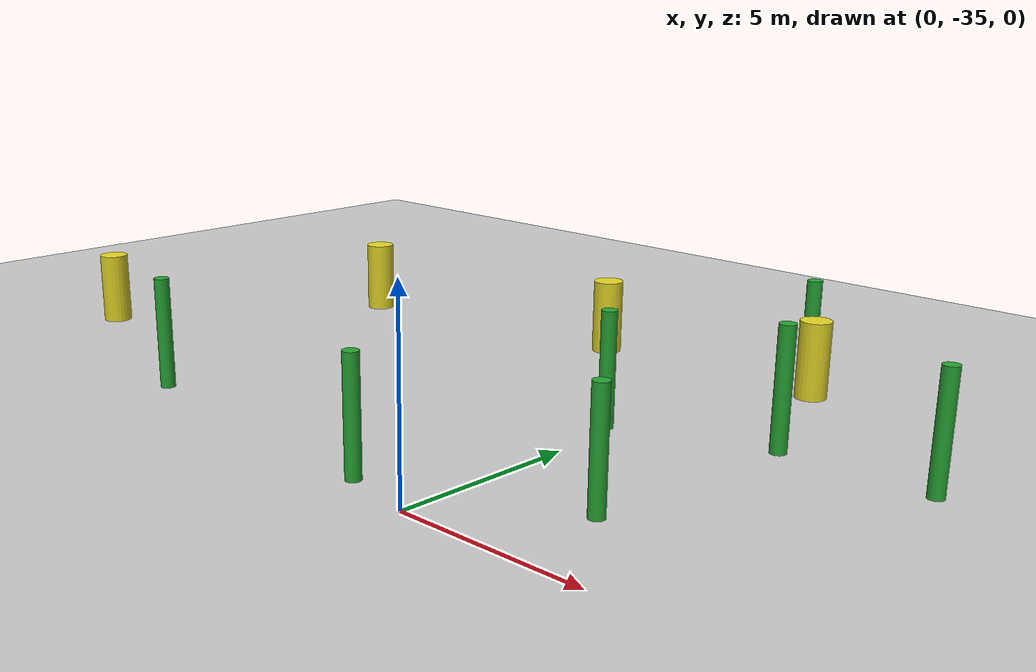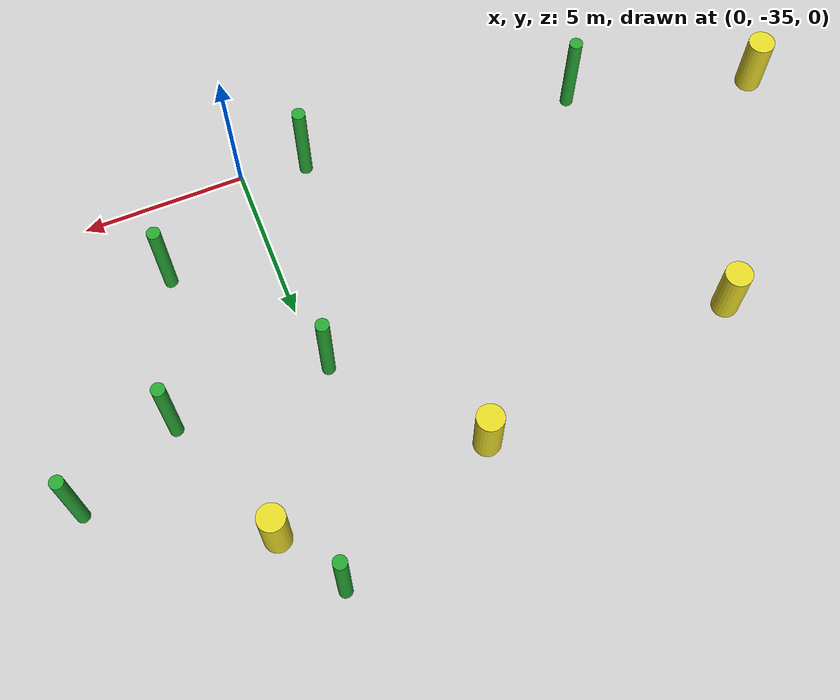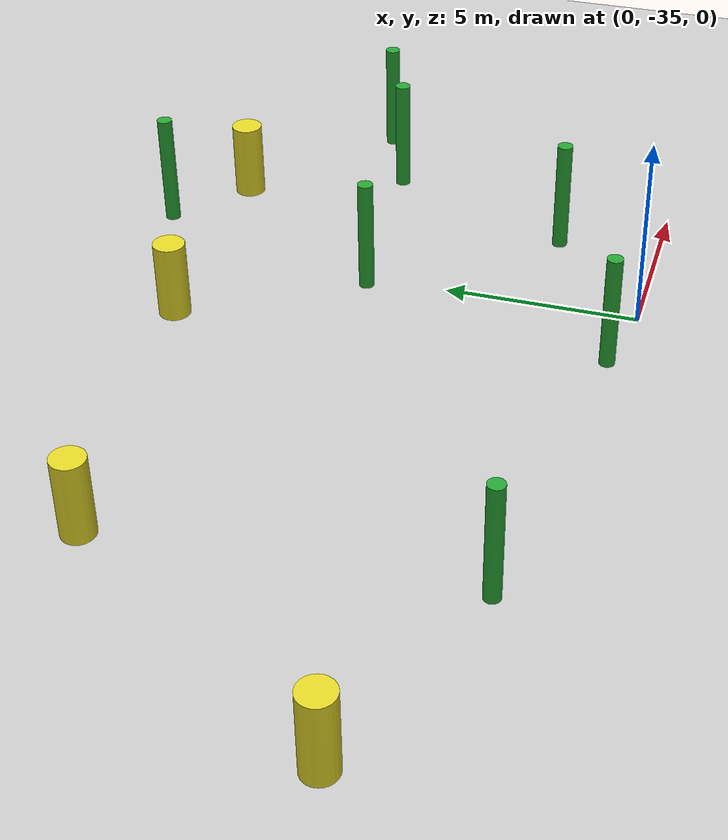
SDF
<sdf version="1.7">
 <world name="default">
  <model name="ground_plane">
   <static>1</static>
   <link name="link">
    <collision name="collision">
     <geometry><plane><normal>0 0 1</normal><size>100 100</size></plane></geometry>
     <surface>
      <contact><collide_bitmask>65535</collide_bitmask></contact>
      <friction><ode><mu>100</mu><mu2>50</mu2></ode></friction>
     </surface>
    </collision>
    <visual name="visual">
     <cast_shadows>0</cast_shadows>
     <geometry><plane><normal>0 0 1</normal><size>100 100</size></plane></geometry>
     <material>
      <script><uri>file://media/materials/scripts/gazebo.material</uri><name>Gazebo/Grey</name></script>
     </material>
    </visual>
   </link>
  </model>
  <model name="cylinder8">
   <pose>-4.68562 -30.5584 0 0 -0 0</pose>
   <frame name="obs_cylinder_small::__model__" attached_to="obs_cylinder_small::link">
    <pose relative_to="__model__">9 3 2 0 -0 0</pose>
   </frame>
   <link name="obs_cylinder_small::link">
    <inertial><mass>1</mass></inertial>
    <pose relative_to="obs_cylinder_small::__model__">0 0 0 0 -0 0</pose>
    <visual name="visual">
     <geometry><cylinder><radius>0.2</radius><length>3</length></cylinder></geometry>
     <material>
      <script><name>Gazebo/Green</name><uri>file://media/materials/scripts/gazebo.material</uri></script>
     </material>
    </visual>
    <collision name="collision">
     <geometry><cylinder><radius>0.25</radius><length>3</length></cylinder></geometry>
    </collision>
   </link>
   <static>1</static>
  </model>
  <model name="cylinder4_clone_13">
   <pose>-1.50814 -19.6511 0 0 -0 0</pose>
   <frame name="obs_cylinder_small::__model__" attached_to="obs_cylinder_small::link">
    <pose relative_to="__model__">3.01135 -2.03851 1.5 0 -0 0</pose>
   </frame>
   <link name="obs_cylinder_small::link">
    <inertial><mass>1</mass></inertial>
    <pose relative_to="obs_cylinder_small::__model__">0 0 0 0 -0 0</pose>
    <visual name="visual">
     <geometry><cylinder><radius>0.2</radius><length>3</length></cylinder></geometry>
     <material>
      <script><name>Gazebo/Green</name><uri>file://media/materials/scripts/gazebo.material</uri></script>
     </material>
    </visual>
    <collision name="collision">
     <geometry><cylinder><radius>0.25</radius><length>3</length></cylinder></geometry>
    </collision>
   </link>
   <static>1</static>
  </model>
  <model name="cylinder3_clone_3">
   <pose>-12.6791 -29.8524 0 0 -0 0</pose>
   <frame name="obs_cylinder_small::__model__" attached_to="obs_cylinder_small::link">
    <pose relative_to="__model__">2.02255 -4.00149 1.5 0 -0 0</pose>
   </frame>
   <link name="obs_cylinder_small::link">
    <inertial><mass>1</mass></inertial>
    <pose relative_to="obs_cylinder_small::__model__">0 0 0 0 -0 0</pose>
    <visual name="visual">
     <geometry><cylinder><radius>0.2</radius><length>3</length></cylinder></geometry>
     <material>
      <script><name>Gazebo/Green</name><uri>file://media/materials/scripts/gazebo.material</uri></script>
     </material>
    </visual>
    <collision name="collision">
     <geometry><cylinder><radius>0.25</radius><length>3</length></cylinder></geometry>
    </collision>
   </link>
   <static>1</static>
  </model>
  <model name="cylinder3_clone_9">
   <pose>-3.0485 -28.8006 0 0 -0 0</pose>
   <frame name="obs_cylinder_small::__model__" attached_to="obs_cylinder_small::link">
    <pose relative_to="__model__">1.03519 -5.79704 1.5 0 -0 0</pose>
   </frame>
   <link name="obs_cylinder_small::link">
    <inertial><mass>1</mass></inertial>
    <pose relative_to="obs_cylinder_small::__model__">0 0 0 0 -0 0</pose>
    <visual name="visual">
     <geometry><cylinder><radius>0.2</radius><length>3</length></cylinder></geometry>
     <material>
      <script><name>Gazebo/Green</name><uri>file://media/materials/scripts/gazebo.material</uri></script>
     </material>
    </visual>
    <collision name="collision">
     <geometry><cylinder><radius>0.25</radius><length>3</length></cylinder></geometry>
    </collision>
   </link>
   <static>1</static>
  </model>
  <model name="cylinder4_clone_17_clone_5_clone">
   <frame name="obs_cylinder_large::__model__" attached_to="obs_cylinder_large::link">
    <pose relative_to="__model__">-1.00318 -3.92453 1.5 0 -0 0</pose>
   </frame>
   <link name="obs_cylinder_large::link">
    <inertial><mass>1</mass></inertial>
    <pose relative_to="obs_cylinder_large::__model__">0 0 0 0 -0 0</pose>
    <visual name="visual">
     <geometry><cylinder><radius>0.4</radius><length>2</length></cylinder></geometry>
     <material>
      <script><name>Gazebo/Yellow</name><uri>file://media/materials/scripts/gazebo.material</uri></script>
     </material>
    </visual>
    <collision name="collision">
     <geometry><cylinder><radius>0.25</radius><length>2</length></cylinder></geometry>
    </collision>
   </link>
   <static>1</static>
   <pose>-10.7035 -21.3374 0 0 -0 0</pose>
  </model>
  <model name="cylinder4_clone_17_clone_5_clone_0">
   <frame name="obs_cylinder_large::__model__" attached_to="obs_cylinder_large::link">
    <pose relative_to="__model__">-1.00318 -3.92453 1.5 0 -0 0</pose>
   </frame>
   <link name="obs_cylinder_large::link">
    <inertial><mass>1</mass></inertial>
    <pose relative_to="obs_cylinder_large::__model__">0 0 0 0 -0 0</pose>
    <visual name="visual">
     <geometry><cylinder><radius>0.4</radius><length>2</length></cylinder></geometry>
     <material>
      <script><name>Gazebo/Yellow</name><uri>file://media/materials/scripts/gazebo.material</uri></script>
     </material>
    </visual>
    <collision name="collision">
     <geometry><cylinder><radius>0.25</radius><length>2</length></cylinder></geometry>
    </collision>
   </link>
   <static>1</static>
   <pose>-2.56336 -20.0257 0 0 -0 0</pose>
  </model>
  <model name="cylinder4_clone_17_clone_5_clone_1">
   <frame name="obs_cylinder_large::__model__" attached_to="obs_cylinder_large::link">
    <pose relative_to="__model__">-1.00318 -3.92453 1.5 0 -0 0</pose>
   </frame>
   <link name="obs_cylinder_large::link">
    <inertial><mass>1</mass></inertial>
    <pose relative_to="obs_cylinder_large::__model__">0 0 0 0 -0 0</pose>
    <visual name="visual">
     <geometry><cylinder><radius>0.4</radius><length>2</length></cylinder></geometry>
     <material>
      <script><name>Gazebo/Yellow</name><uri>file://media/materials/scripts/gazebo.material</uri></script>
     </material>
    </visual>
    <collision name="collision">
     <geometry><cylinder><radius>0.25</radius><length>2</length></cylinder></geometry>
    </collision>
   </link>
   <static>1</static>
   <pose>3.7161 -19.6384 0 0 -0 0</pose>
  </model>
  <model name="cylinder4_clone_11_clone_27_clone_0">
   <frame name="obs_cylinder_small::__model__" attached_to="obs_cylinder_small::link">
    <pose relative_to="__model__">9.0654 0.083267 1.5 0 -0 0</pose>
   </frame>
   <link name="obs_cylinder_small::link">
    <inertial><mass>1</mass></inertial>
    <pose relative_to="obs_cylinder_small::__model__">0 0 0 0 -0 0</pose>
    <visual name="visual">
     <geometry><cylinder><radius>0.2</radius><length>3</length></cylinder></geometry>
     <material>
      <script><name>Gazebo/Green</name><uri>file://media/materials/scripts/gazebo.material</uri></script>
     </material>
    </visual>
    <collision name="collision">
     <geometry><cylinder><radius>0.25</radius><length>3</length></cylinder></geometry>
    </collision>
   </link>
   <static>1</static>
   <pose>-9.37622 -28.0112 0 0 -0 0</pose>
  </model>
  <model name="cylinder4_clone_11_clone_27_clone_1">
   <frame name="obs_cylinder_small::__model__" attached_to="obs_cylinder_small::link">
    <pose relative_to="__model__">9.0654 0.083267 1.5 0 -0 0</pose>
   </frame>
   <link name="obs_cylinder_small::link">
    <inertial><mass>1</mass></inertial>
    <pose relative_to="obs_cylinder_small::__model__">0 0 0 0 -0 0</pose>
    <visual name="visual">
     <geometry><cylinder><radius>0.2</radius><length>3</length></cylinder></geometry>
     <material>
      <script><name>Gazebo/Green</name><uri>file://media/materials/scripts/gazebo.material</uri></script>
     </material>
    </visual>
    <collision name="collision">
     <geometry><cylinder><radius>0.25</radius><length>3</length></cylinder></geometry>
    </collision>
   </link>
   <static>1</static>
   <pose>-1.59962 -26.4027 0 0 -0 0</pose>
  </model>
  <model name="cylinder4_clone_17_clone_5_clone_clone_0">
   <frame name="obs_cylinder_large::__model__" attached_to="obs_cylinder_large::link">
    <pose relative_to="__model__">-1.00318 -3.92453 1.5 0 -0 0</pose>
   </frame>
   <link name="obs_cylinder_large::link">
    <inertial><mass>1</mass></inertial>
    <pose relative_to="obs_cylinder_large::__model__">0 0 0 0 -0 0</pose>
    <visual name="visual">
     <geometry><cylinder><radius>0.4</radius><length>2</length></cylinder></geometry>
     <material>
      <script><name>Gazebo/Yellow</name><uri>file://media/materials/scripts/gazebo.material</uri></script>
     </material>
    </visual>
    <collision name="collision">
     <geometry><cylinder><radius>0.25</radius><length>2</length></cylinder></geometry>
    </collision>
   </link>
   <static>1</static>
   <pose>-15.1733 -28.1573 0 0 -0 0</pose>
  </model>
  <model name="cylinder4_clone_11_clone_27_clone_5_clone">
   <frame name="obs_cylinder_small::__model__" attached_to="obs_cylinder_small::link">
    <pose relative_to="__model__">9.0654 0.083267 1.5 0 -0 0</pose>
   </frame>
   <link name="obs_cylinder_small::link">
    <inertial><mass>1</mass></inertial>
    <pose relative_to="obs_cylinder_small::__model__">0 0 0 0 -0 0</pose>
    <visual name="visual">
     <geometry><cylinder><radius>0.2</radius><length>3</length></cylinder></geometry>
     <material>
      <script><name>Gazebo/Green</name><uri>file://media/materials/scripts/gazebo.material</uri></script>
     </material>
    </visual>
    <collision name="collision">
     <geometry><cylinder><radius>0.25</radius><length>3</length></cylinder></geometry>
    </collision>
   </link>
   <static>1</static>
   <pose>-5.97689 -32.4343 0 0 -0 0</pose>
  </model>
 </world>
</sdf>
